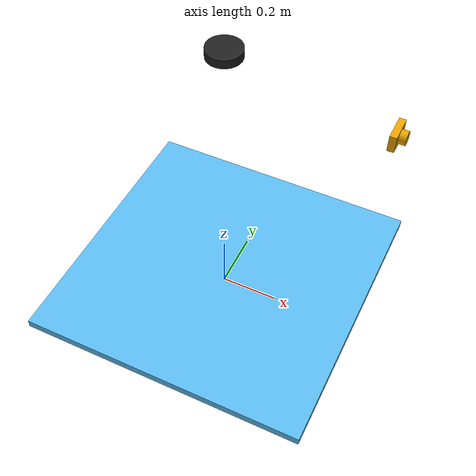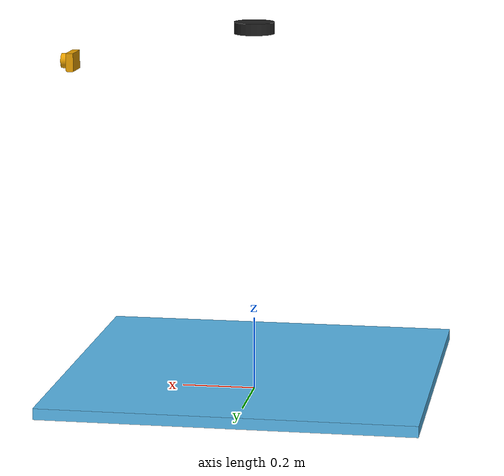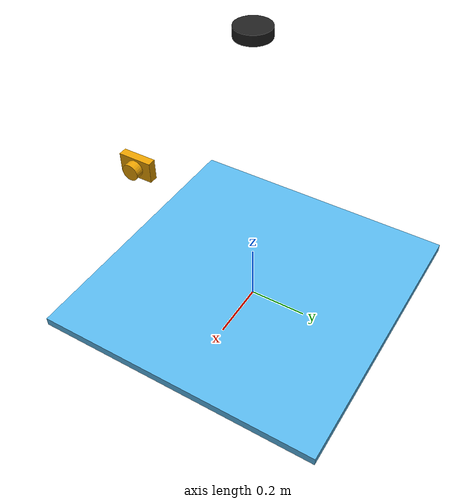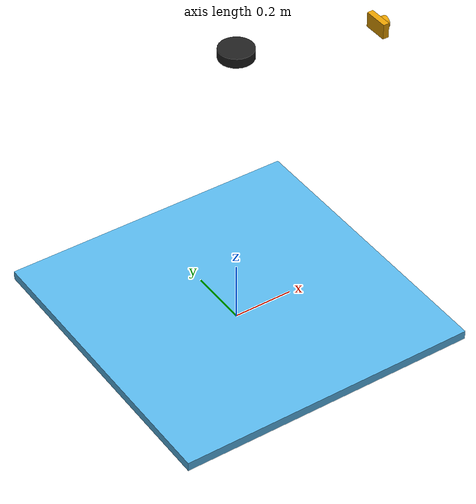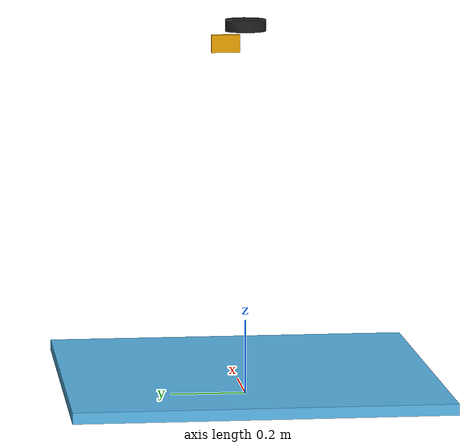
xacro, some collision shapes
<?xml version="1.0" ?>
<robot name="mars_explorer" xmlns:xacro="http://ros.org/wiki/xacro">
  <xacro:include filename="$(find 41068_ignition_bringup)/urdf/common_properties.urdf.xacro"/>
  <xacro:include filename="$(find 41068_ignition_bringup)/urdf/mars_explorer.gazebo.xacro"/>

  <xacro:property name="r200_cam_rgb_px" value="0.005"/>
  <xacro:property name="r200_cam_rgb_py" value="0.018"/>
  <xacro:property name="r200_cam_rgb_pz" value="0.013"/>
  <xacro:property name="r200_cam_depth_offset" value="0.01"/>

  <link name="base_footprint"/>

  <joint name="base_joint" type="fixed">
    <parent link="base_link"/>
    <child link="base_footprint" />
    <origin xyz="0 0 -0.010" rpy="0 0 0"/>
  </joint>

  <link name="base_link">
    <visual>
      <origin xyz="0 0 0.0" rpy="1.570796 0 1.570796"/>
      <geometry>
        <mesh filename="file://$(find 41068_ignition_bringup)/urdf/meshes/curiosity_mars_rover.obj" scale="0.37 0.37 0.37"/>
      </geometry>
    </visual>

    <collision>
      <origin xyz="0 0 0.047" rpy="0 0 0"/>
      <geometry>
        <box size="1.0 1.0 0.03"/>
      </geometry>
    </collision>

    <inertial>
      <origin xyz="0 0 0" rpy="0 0 0"/>
      <mass value="0"/>
      <inertia ixx="8.7002718e-03" ixy="-4.7576583e-05" ixz="1.1160499e-04"
               iyy="8.6195418e-03" iyz="-3.5422299e-06"
               izz="1.4612727e-02" />
    </inertial>
  </link>

  <joint name="wheel_left_joint" type="continuous">
    <parent link="base_link"/>
    <child link="wheel_left_link"/>
    <origin xyz="0.0 0.144 0.023" rpy="-1.57 0 0"/>
    <axis xyz="0 0 1"/>
  </joint>

  <link name="wheel_left_link">
    <visual>
      <origin xyz="0 0 0" rpy="0 0 0"/> <!-- When using tb3 wheel stl, this was rpy="1.57 0 0" -->
      <geometry>
        <cylinder length="0.018" radius="0.033"/>
      </geometry>
      <material name="dark"/>
    </visual>

    <collision>
      <origin xyz="0 0 0" rpy="0 0 0"/>
      <geometry>
        <cylinder length="0.018" radius="0.033"/>
      </geometry>
    </collision>

    <inertial>
      <origin xyz="0 0 0" />
      <mass value="2.8498940e-02" />
      <inertia ixx="1.1175580e-05" ixy="-4.2369783e-11" ixz="-5.9381719e-09"
               iyy="1.1192413e-05" iyz="-1.4400107e-11"
               izz="2.0712558e-05" />
      </inertial>
  </link>

  <joint name="wheel_right_joint" type="continuous">
    <parent link="base_link"/>
    <child link="wheel_right_link"/>
    <origin xyz="0.0 -0.144 0.023" rpy="-1.57 0 0"/>
    <axis xyz="0 0 1"/>
  </joint>

  <link name="wheel_right_link">
    <visual>
      <origin xyz="0 0 0" rpy="0 0 0"/> <!-- When using tb3 wheel stl, this was rpy="1.57 0 0" -->
      <geometry>
        <cylinder length="0.018" radius="0.033"/>
      </geometry>
      <material name="dark"/>
    </visual>

    <collision>
      <origin xyz="0 0 0" rpy="0 0 0"/>
      <geometry>
        <cylinder length="0.018" radius="0.033"/>
      </geometry>
    </collision>

    <inertial>
      <origin xyz="0 0 0" />
      <mass value="2.8498940e-02" />
      <inertia ixx="1.1175580e-05" ixy="-4.2369783e-11" ixz="-5.9381719e-09"
               iyy="1.1192413e-05" iyz="-1.4400107e-11"
               izz="2.0712558e-05" />
      </inertial>
  </link>

  <joint name="caster_back_right_joint" type="fixed">
    <parent link="base_link"/>
    <child link="caster_back_right_link"/>
    <origin xyz="-0.177 -0.064 -0.004" rpy="-1.57 0 0"/>
  </joint>

  <link name="caster_back_right_link">
    <collision>
      <origin xyz="0 0.001 0" rpy="0 0 0"/>
      <geometry>
        <box size="0.030 0.009 0.020"/>
      </geometry>
    </collision>

    <inertial>
      <origin xyz="0 0 0" />
      <mass value="0.005" />
      <inertia ixx="0.001" ixy="0.0" ixz="0.0"
               iyy="0.001" iyz="0.0"
               izz="0.001" />
    </inertial>
  </link>

  <joint name="caster_back_left_joint" type="fixed">
    <parent link="base_link"/>
    <child link="caster_back_left_link"/>
    <origin xyz="-0.177 0.064 -0.004" rpy="-1.57 0 0"/>
  </joint>

  <link name="caster_back_left_link">
    <collision>
      <origin xyz="0 0.001 0" rpy="0 0 0"/>
      <geometry>
        <box size="0.030 0.009 0.020"/>
      </geometry>
    </collision>

    <inertial>
      <origin xyz="0 0 0" />
      <mass value="0.005" />
      <inertia ixx="0.001" ixy="0.0" ixz="0.0"
               iyy="0.001" iyz="0.0"
               izz="0.001" />
    </inertial>
  </link>

  <joint name="imu_joint" type="fixed">
    <parent link="base_link"/>
    <child link="imu_link"/>
    <origin xyz="0.0 0 0.068" rpy="0 0 0"/>
  </joint>

  <link name="imu_link"/>

  <joint name="scan_joint" type="fixed">
    <parent link="base_link"/>
    <child link="base_scan"/>
    <origin xyz="0 0 1.0 " rpy="0 0 0"/>
  </joint>

  <link name="base_scan">
    <visual>
      <origin xyz="0 0 0" rpy="0 0 0"/>
      <geometry>
        <cylinder length="0.0315" radius="0.055"/>
      </geometry>
      <material name="dark"/>
    </visual>

    <inertial>
      <mass value="0" />
      <origin xyz="0 0 0" />
      <inertia ixx="0.001" ixy="0.0" ixz="0.0"
               iyy="0.001" iyz="0.0"
               izz="0.001" />
    </inertial>
  </link>

  <joint name="camera_joint" type="fixed">
    <origin xyz="0.5 0.0 0.9" rpy="0 0 0"/>
    <parent link="base_link"/>
    <child link="camera_link"/>
  </joint>

  <link name="camera_link">
    <visual>
     <origin xyz="0 0 0" rpy="0 0 0"/>
      <geometry>
        <box size="0.02 0.08 0.05"/>
      </geometry>
      <material name="dark"/>
    </visual>
    <visual>
     <origin xyz="0.015 0 0" rpy="0 1.57 0"/>
      <geometry>
        <cylinder length="0.03" radius="0.02"/>
      </geometry>
      <material name="dark"/>
    </visual>
  </link>

  <joint name="camera_rgb_joint" type="fixed">
    <origin xyz="${r200_cam_rgb_px} ${r200_cam_rgb_py} ${r200_cam_rgb_pz}" rpy="0 0 0"/>
    <parent link="camera_link"/>
    <child link="camera_rgb_frame"/>
  </joint>
  <link name="camera_rgb_frame"/>

  <joint name="camera_rgb_optical_joint" type="fixed">
    <origin xyz="0 0 0" rpy="-1.57 0 -1.57"/>
    <parent link="camera_rgb_frame"/>
    <child link="camera_rgb_optical_frame"/>
  </joint>
  <link name="camera_rgb_optical_frame"/>

  <joint name="camera_depth_joint" type="fixed">
    <origin xyz="${r200_cam_rgb_px} ${r200_cam_rgb_py + r200_cam_depth_offset} ${r200_cam_rgb_pz}" rpy="0 0 0"/>
    <parent link="camera_link"/>
    <child link="camera_depth_frame"/>
  </joint>
  <link name="camera_depth_frame"/>

  <joint name="camera_depth_optical_joint" type="fixed">
    <origin xyz="0 0 0" rpy="-1.57 0 -1.57"/>
    <parent link="camera_depth_frame"/>
    <child link="camera_depth_optical_frame"/>
  </joint>
  <link name="camera_depth_optical_frame"/>

</robot>
